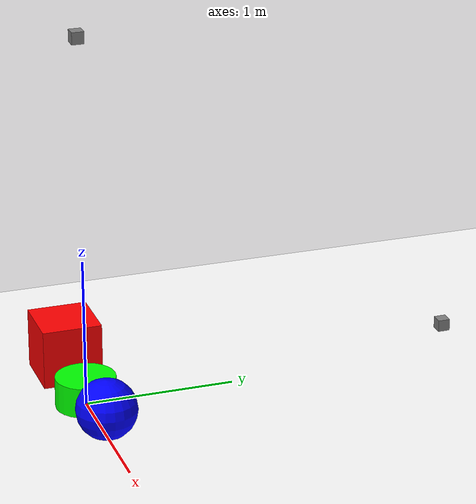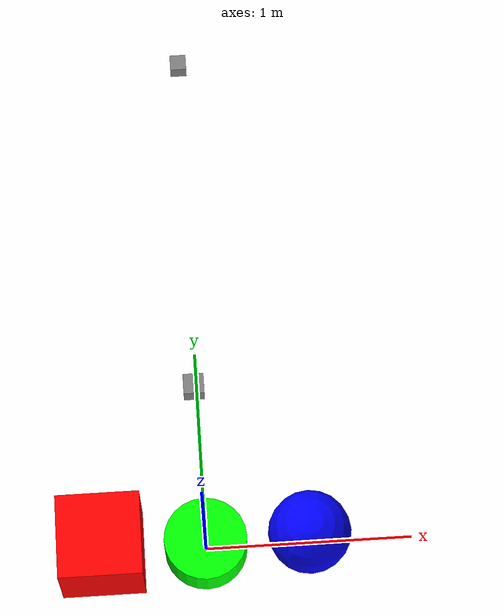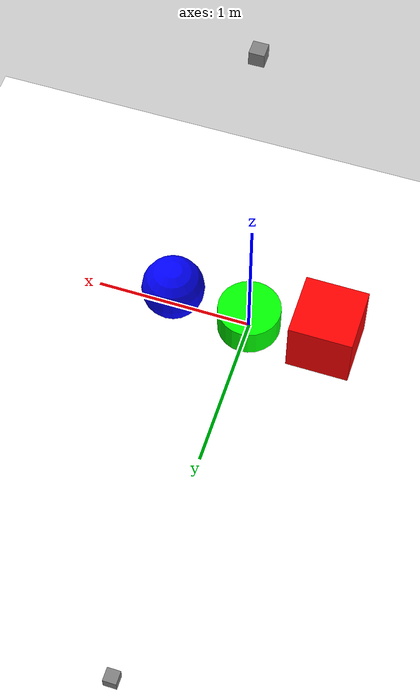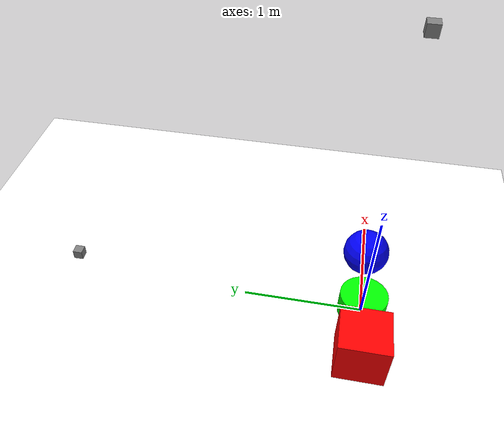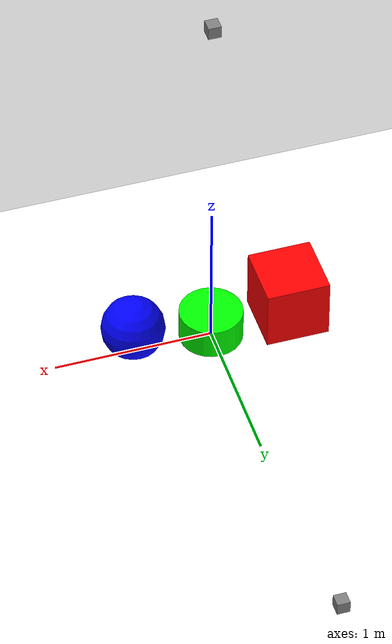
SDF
<?xml version="1.0"?>
<sdf version="1.6">
  <world name="default">
    <include>
      <uri>model://sun</uri>
    </include>

    <!--white floor -->
    <model name="white_floor">
      <static>true</static>
      <link name="link">
        <collision name="collision">
          <geometry>
            <plane>
              <normal>0 0 1</normal>
              <size>10 10</size>
            </plane>
          </geometry>
          <surface>
            <friction>
              <ode>
                <mu>1.0</mu>
                <mu2>1.0</mu2>
              </ode>
            </friction>
            <contact>
              <ode>
                <soft_cfm>0.0</soft_cfm>
                <soft_erp>0.2</soft_erp>
                <kp>1e+13</kp>
                <kd>1</kd>
                <max_vel>100.0</max_vel>
                <min_depth>0.001</min_depth>
              </ode>
            </contact>
          </surface>
        </collision>
        <visual name="visual">
          <geometry>
            <plane>
              <normal>0 0 1</normal>
              <size>10 10</size>
            </plane>
          </geometry>
          <material>
            <ambient>1 1 1 1</ambient>
            <diffuse>1 1 1 1</diffuse>
          </material>
        </visual>
      </link>
    </model>

    <!-- box -->
    <model name="box">
      <pose>-0.5 0 0.2 0 0 0</pose>
      <link name="link">
        <collision name="collision">
          <geometry>
            <box>
              <size>0.4 0.4 0.4</size>
            </box>
          </geometry>
        </collision>
        <visual name="visual">
          <geometry>
            <box>
              <size>0.4 0.4 0.4</size>
            </box>
          </geometry>
          <material>
            <ambient>1 0 0 1</ambient>
            <diffuse>1 0 0 1</diffuse>
          </material>
        </visual>
      </link>
    </model>

    <!-- cylinder -->
    <model name="cylinder">
      <pose>0 0 0 0 0 0</pose>
      <link name="link">
        <collision name="collision">
          <geometry>
            <cylinder>
              <radius>0.2</radius>
              <length>0.4</length>
            </cylinder>
          </geometry>
        </collision>
        <visual name="visual">
          <geometry>
            <cylinder>
              <radius>0.2</radius>
              <length>0.4</length>
            </cylinder>
          </geometry>
          <material>
            <ambient>0 1 0 1</ambient>
            <diffuse>0 1 0 1</diffuse>
          </material>
        </visual>
      </link>
    </model>

    <!--sphere -->
    <model name="sphere">
      <pose>0.5 0 0.2 0 0 0</pose>
      <link name="link">
        <collision name="collision">
          <geometry>
            <sphere>
              <radius>0.2</radius>
            </sphere>
          </geometry>
        </collision>
        <visual name="visual">
          <geometry>
            <sphere>
              <radius>0.2</radius>
            </sphere>
          </geometry>
          <material>
            <ambient>0 0 1 1</ambient>
            <diffuse>0 0 1 1</diffuse>
          </material>
        </visual>
      </link>
    </model>

    <!-- top-down camera model -->
    <model name="top_down_camera">
      <static>true</static>
      <pose>0 0 2.5 1.5708 1.5708 0</pose>
      <link name="link">
        <visual name="visual">
          <geometry>
            <box>
              <size>0.08 0.08 0.08</size>
            </box>
          </geometry>
          <material>
            <ambient>0.5 0.5 0.5 1</ambient>
            <diffuse>0.5 0.5 0.5 1</diffuse>
          </material>
        </visual>
        <sensor name="camera_sensor" type="camera">
          <camera>
            <horizontal_fov>1.047</horizontal_fov>
            <image>
              <width>1280</width>
              <height>960</height>
              <format>R8G8B8</format>
            </image>
            <clip>
              <near>0.1</near>
              <far>100</far>
            </clip>
          </camera>
          <always_on>true</always_on>
          <update_rate>30</update_rate>
          <plugin name="top_down_camera_controller" filename="libgazebo_ros_camera.so">
            <ros>
              <namespace>/top_down_camera</namespace>
              <remapping>image_raw:=/top_down_camera/image_raw</remapping>
            </ros>
            <always_on>true</always_on>
            <update_rate>30</update_rate>
            <camera_name>top_down_camera</camera_name>
            <frame_name>camera_link</frame_name>
          </plugin>
        </sensor>
      </link>
    </model>

    <!-- side view camera model -->
    <model name="side_view_camera">
      <static>true</static>
      <pose>0 2.5 0.204926 0 0 -1.57</pose>
      <link name="link">
        <visual name="visual">
          <geometry>
            <box>
              <size>0.08 0.08 0.08</size>
            </box>
          </geometry>
          <material>
            <ambient>0.5 0.5 0.5 1</ambient>
            <diffuse>0.5 0.5 0.5 1</diffuse>
          </material>
        </visual>
        <sensor name="camera_sensor" type="camera">
          <camera>
            <horizontal_fov>1.047</horizontal_fov>
            <image>
              <width>1280</width>
              <height>960</height>
              <format>R8G8B8</format>
            </image>
            <clip>
              <near>0.1</near>
              <far>100</far>
            </clip>
          </camera>
          <always_on>true</always_on>
          <update_rate>30</update_rate>
          <plugin name="side_view_camera_controller" filename="libgazebo_ros_camera.so">
            <ros>
              <namespace>/side_view_camera</namespace>
              <remapping>image_raw:=/side_view_camera/image_raw</remapping>
            </ros>
            <always_on>true</always_on>
            <update_rate>30</update_rate>
            <camera_name>side_view_camera</camera_name>
            <frame_name>camera_link</frame_name>
          </plugin>
        </sensor>
      </link>
    </model>
  </world>
</sdf>
